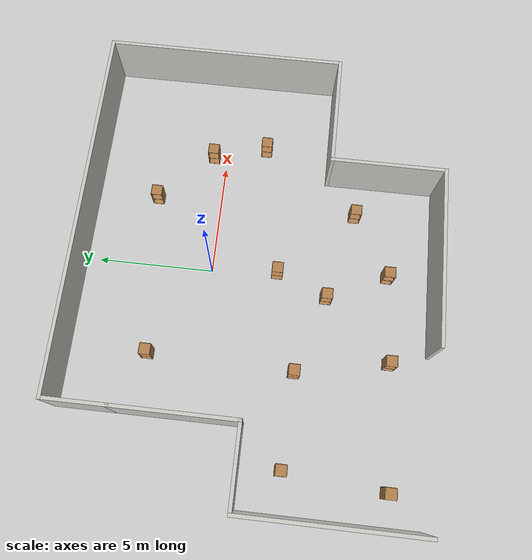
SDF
<sdf version="1.7">
 <world name="default">
  <light name="sun" type="directional">
   <pose>0 0 10 0 -0 0</pose>
   <diffuse>0.8 0.8 0.8 1</diffuse>
   <specular>0.2 0.2 0.2 1</specular>
   <attenuation>
    <range>1000</range>
    <constant>0.9</constant>
    <linear>0.01</linear>
    <quadratic>0.001</quadratic>
   </attenuation>
   <direction>-0.5 0.1 -0.9</direction>
   <spot><inner_angle>0</inner_angle><outer_angle>0</outer_angle><falloff>0</falloff></spot>
  </light>
  <model name="ground_plane">
   <static>1</static>
   <link name="link">
    <collision name="collision">
     <geometry><plane><normal>0 0 1</normal><size>100 100</size></plane></geometry>
     <surface><friction><ode><mu>100</mu><mu2>50</mu2></ode></friction></surface>
    </collision>
    <visual name="visual">
     <cast_shadows>0</cast_shadows>
     <geometry><plane><normal>0 0 1</normal><size>100 100</size></plane></geometry>
     <material>
      <script><uri>file://media/materials/scripts/gazebo.material</uri><name>Gazebo/Grey</name></script>
     </material>
    </visual>
   </link>
  </model>
  <gravity>0 0 -9.8</gravity>
  <magnetic_field>6e-06 2.3e-05 -4.2e-05</magnetic_field>
  <atmosphere type="adiabatic"/>
  <physics type="ode">
   <max_step_size>0.001</max_step_size>
   <real_time_factor>1</real_time_factor>
   <real_time_update_rate>1000</real_time_update_rate>
  </physics>
  <scene><ambient>0.4 0.4 0.4 1</ambient><background>0.7 0.7 0.7 1</background><shadows>1</shadows></scene>
  <audio><device>default</device></audio>
  <spherical_coordinates>
   <surface_model>EARTH_WGS84</surface_model>
   <latitude_deg>0</latitude_deg>
   <longitude_deg>0</longitude_deg>
   <elevation>0</elevation>
   <heading_deg>0</heading_deg>
  </spherical_coordinates>
  <model name="muestra">
   <pose>-0.08947 -1.96148 0 0 -0 0</pose>
   <link name="Wall_10">
    <collision name="Wall_10_Collision">
     <geometry><box><size>5 0.15 2.5</size></box></geometry>
     <pose>0 0 1.25 0 -0 0</pose>
    </collision>
    <visual name="Wall_10_Visual">
     <pose>0 0 1.25 0 -0 0</pose>
     <geometry><box><size>5 0.15 2.5</size></box></geometry>
     <material>
      <script><uri>file://media/materials/scripts/gazebo.material</uri><name>Gazebo/CeilingTiled</name></script>
      <ambient>1 1 1 1</ambient>
     </material>
     <meta><layer>0</layer></meta>
    </visual>
    <pose>4.875 -5.175 0 0 -0 -1.5708</pose>
   </link>
   <link name="Wall_11">
    <collision name="Wall_11_Collision">
     <geometry><box><size>7.75 0.15 2.5</size></box></geometry>
     <pose>0 0 1.25 0 -0 0</pose>
    </collision>
    <visual name="Wall_11_Visual">
     <pose>0 0 1.25 0 -0 0</pose>
     <geometry><box><size>7.75 0.15 2.5</size></box></geometry>
     <material>
      <script><uri>file://media/materials/scripts/gazebo.material</uri><name>Gazebo/CeilingTiled</name></script>
      <ambient>1 1 1 1</ambient>
     </material>
     <meta><layer>0</layer></meta>
    </visual>
    <pose>1.075 -7.6 0 0 -0 3.14159</pose>
   </link>
   <link name="Wall_3">
    <collision name="Wall_3_Collision">
     <geometry><box><size>7.5 0.15 2.5</size></box></geometry>
     <pose>0 0 1.25 0 -0 0</pose>
    </collision>
    <visual name="Wall_3_Visual">
     <pose>0 0 1.25 0 -0 0</pose>
     <geometry><box><size>7.5 0.15 2.5</size></box></geometry>
     <material>
      <script><uri>file://media/materials/scripts/gazebo.material</uri><name>Gazebo/CeilingTiled</name></script>
      <ambient>1 1 1 1</ambient>
     </material>
     <meta><layer>0</layer></meta>
    </visual>
    <pose>-9.725 -3.775 0 0 -0 1.5708</pose>
   </link>
   <link name="Wall_4">
    <collision name="Wall_4_Collision">
     <geometry><box><size>3.5 0.15 2.5</size></box></geometry>
     <pose>0 0 1.25 0 -0 0</pose>
    </collision>
    <visual name="Wall_4_Visual">
     <pose>0 0 1.25 0 -0 0</pose>
     <geometry><box><size>3.5 0.15 2.5</size></box></geometry>
     <material>
      <script><uri>file://media/materials/scripts/gazebo.material</uri><name>Gazebo/CeilingTiled</name></script>
      <ambient>1 1 1 1</ambient>
     </material>
     <meta><layer>0</layer></meta>
    </visual>
    <pose>-8.05 -0.1 0 0 -0 0</pose>
   </link>
   <link name="Wall_5">
    <collision name="Wall_5_Collision">
     <geometry><box><size>5.25 0.15 2.5</size></box></geometry>
     <pose>0 0 1.25 0 -0 0</pose>
    </collision>
    <visual name="Wall_5_Visual">
     <pose>0 0 1.25 0 -0 0</pose>
     <geometry><box><size>5.25 0.15 2.5</size></box></geometry>
     <material>
      <script><uri>file://media/materials/scripts/gazebo.material</uri><name>Gazebo/CeilingTiled</name></script>
      <ambient>1 1 1 1</ambient>
     </material>
     <meta><layer>0</layer></meta>
    </visual>
    <pose>-6.375 2.45 0 0 -0 1.5708</pose>
   </link>
   <link name="Wall_6">
    <collision name="Wall_6_Collision">
     <geometry><box><size>2.75 0.15 2.5</size></box></geometry>
     <pose>0 0 1.25 0 -0 0</pose>
    </collision>
    <visual name="Wall_6_Visual">
     <pose>0 0 1.25 0 -0 0</pose>
     <geometry><box><size>2.75 0.15 2.5</size></box></geometry>
     <material>
      <script><uri>file://media/materials/scripts/gazebo.material</uri><name>Gazebo/CeilingTiled</name></script>
      <ambient>1 1 1 1</ambient>
     </material>
     <meta><layer>0</layer></meta>
    </visual>
    <pose>-6.375 6.3 0 0 -0 1.5708</pose>
   </link>
   <link name="Wall_7">
    <collision name="Wall_7_Collision">
     <geometry><box><size>16.25 0.15 2.5</size></box></geometry>
     <pose>0 0 1.25 0 -0 0</pose>
    </collision>
    <visual name="Wall_7_Visual">
     <pose>0 0 1.25 0 -0 0</pose>
     <geometry><box><size>16.25 0.15 2.5</size></box></geometry>
     <material>
      <script><uri>file://media/materials/scripts/gazebo.material</uri><name>Gazebo/CeilingTiled</name></script>
      <ambient>1 1 1 1</ambient>
     </material>
     <meta><layer>0</layer></meta>
    </visual>
    <pose>1.675 7.6 0 0 -0 0</pose>
   </link>
   <link name="Wall_8">
    <collision name="Wall_8_Collision">
     <geometry><box><size>10.5 0.15 2.5</size></box></geometry>
     <pose>0 0 1.25 0 -0 0</pose>
    </collision>
    <visual name="Wall_8_Visual">
     <pose>0 0 1.25 0 -0 0</pose>
     <geometry><box><size>10.5 0.15 2.5</size></box></geometry>
     <material>
      <script><uri>file://media/materials/scripts/gazebo.material</uri><name>Gazebo/CeilingTiled</name></script>
      <ambient>1 1 1 1</ambient>
     </material>
     <meta><layer>0</layer></meta>
    </visual>
    <pose>9.725 2.425 0 0 -0 -1.5708</pose>
   </link>
   <link name="Wall_9">
    <collision name="Wall_9_Collision">
     <geometry><box><size>5 0.15 2.5</size></box></geometry>
     <pose>0 0 1.25 0 -0 0</pose>
    </collision>
    <visual name="Wall_9_Visual">
     <pose>0 0 1.25 0 -0 0</pose>
     <geometry><box><size>5 0.15 2.5</size></box></geometry>
     <material>
      <script><uri>file://media/materials/scripts/gazebo.material</uri><name>Gazebo/CeilingTiled</name></script>
      <ambient>1 1 1 1</ambient>
     </material>
     <meta><layer>0</layer></meta>
    </visual>
    <pose>7.3 -2.75 0 0 -0 3.14159</pose>
   </link>
   <static>1</static>
  </model>
  <model name="cabinet">
   <static>1</static>
   <link name="cabinet_bottom_plate">
    <inertial>
     <pose>0 0 -1 0 -0 0</pose>
     <inertia><ixx>2.05</ixx><ixy>0</ixy><ixz>0</ixz><iyy>2.05</iyy><iyz>0</iyz><izz>2.05</izz></inertia>
     <mass>25</mass>
    </inertial>
    <collision name="cabinet_bottom_plate_geom">
     <pose>0 0 0.01 0 -0 0</pose>
     <geometry><box><size>0.45 0.45 0.02</size></box></geometry>
    </collision>
    <visual name="cabinet_bottom_plate_geom_visual">
     <pose>0 0 0.01 0 -0 0</pose>
     <geometry><box><size>0.45 0.45 0.02</size></box></geometry>
     <material>
      <script><uri>file://media/materials/scripts/gazebo.material</uri><name>Gazebo/Wood</name></script>
     </material>
    </visual>
    <collision name="cabinet_bottom_plate_geom_cabinet_back_plate">
     <pose>0.235 0 0.51 0 -0 0</pose>
     <geometry><box><size>0.02 0.45 1.02</size></box></geometry>
    </collision>
    <visual name="cabinet_bottom_plate_geom_cabinet_back_plate_visual">
     <pose>0.235 0 0.51 0 -0 0</pose>
     <geometry><box><size>0.02 0.45 1.02</size></box></geometry>
     <material>
      <script><uri>file://media/materials/scripts/gazebo.material</uri><name>Gazebo/Wood</name></script>
     </material>
    </visual>
    <collision name="cabinet_bottom_plate_geom_cabinet_left_plate">
     <pose>0 0.235 0.51 0 -0 0</pose>
     <geometry><box><size>0.45 0.02 1.02</size></box></geometry>
    </collision>
    <visual name="cabinet_bottom_plate_geom_cabinet_left_plate_visual">
     <pose>0 0.235 0.51 0 -0 0</pose>
     <geometry><box><size>0.45 0.02 1.02</size></box></geometry>
     <material>
      <script><uri>file://media/materials/scripts/gazebo.material</uri><name>Gazebo/Wood</name></script>
     </material>
    </visual>
    <collision name="cabinet_bottom_plate_geom_cabinet_middle_plate">
     <pose>0 0 0.51 0 -0 0</pose>
     <geometry><box><size>0.45 0.45 0.02</size></box></geometry>
    </collision>
    <visual name="cabinet_bottom_plate_geom_cabinet_middle_plate_visual">
     <pose>0 0 0.51 0 -0 0</pose>
     <geometry><box><size>0.45 0.45 0.02</size></box></geometry>
     <material>
      <script><uri>file://media/materials/scripts/gazebo.material</uri><name>Gazebo/Wood</name></script>
     </material>
    </visual>
    <collision name="cabinet_bottom_plate_geom_cabinet_right_plate">
     <pose>0 -0.235 0.51 0 -0 0</pose>
     <geometry><box><size>0.45 0.02 1.02</size></box></geometry>
    </collision>
    <visual name="cabinet_bottom_plate_geom_cabinet_right_plate_visual">
     <pose>0 -0.235 0.51 0 -0 0</pose>
     <geometry><box><size>0.45 0.02 1.02</size></box></geometry>
     <material>
      <script><uri>file://media/materials/scripts/gazebo.material</uri><name>Gazebo/Wood</name></script>
     </material>
    </visual>
    <collision name="cabinet_bottom_plate_geom_cabinet_top_plate">
     <pose>0 0 1.01 0 -0 0</pose>
     <geometry><box><size>0.45 0.45 0.02</size></box></geometry>
    </collision>
    <visual name="cabinet_bottom_plate_geom_cabinet_top_plate_visual">
     <pose>0 0 1.01 0 -0 0</pose>
     <geometry><box><size>0.45 0.45 0.02</size></box></geometry>
     <material>
      <script><uri>file://media/materials/scripts/gazebo.material</uri><name>Gazebo/Wood</name></script>
     </material>
    </visual>
   </link>
   <pose>-4.10967 -3.96958 0 0 -0 0</pose>
  </model>
  <model name="cabinet_0">
   <static>1</static>
   <link name="cabinet_bottom_plate">
    <inertial>
     <pose>0 0 -1 0 -0 0</pose>
     <inertia><ixx>2.05</ixx><ixy>0</ixy><ixz>0</ixz><iyy>2.05</iyy><iyz>0</iyz><izz>2.05</izz></inertia>
     <mass>25</mass>
    </inertial>
    <collision name="cabinet_bottom_plate_geom">
     <pose>0 0 0.01 0 -0 0</pose>
     <geometry><box><size>0.45 0.45 0.02</size></box></geometry>
    </collision>
    <visual name="cabinet_bottom_plate_geom_visual">
     <pose>0 0 0.01 0 -0 0</pose>
     <geometry><box><size>0.45 0.45 0.02</size></box></geometry>
     <material>
      <script><uri>file://media/materials/scripts/gazebo.material</uri><name>Gazebo/Wood</name></script>
     </material>
    </visual>
    <collision name="cabinet_bottom_plate_geom_cabinet_back_plate">
     <pose>0.235 0 0.51 0 -0 0</pose>
     <geometry><box><size>0.02 0.45 1.02</size></box></geometry>
    </collision>
    <visual name="cabinet_bottom_plate_geom_cabinet_back_plate_visual">
     <pose>0.235 0 0.51 0 -0 0</pose>
     <geometry><box><size>0.02 0.45 1.02</size></box></geometry>
     <material>
      <script><uri>file://media/materials/scripts/gazebo.material</uri><name>Gazebo/Wood</name></script>
     </material>
    </visual>
    <collision name="cabinet_bottom_plate_geom_cabinet_left_plate">
     <pose>0 0.235 0.51 0 -0 0</pose>
     <geometry><box><size>0.45 0.02 1.02</size></box></geometry>
    </collision>
    <visual name="cabinet_bottom_plate_geom_cabinet_left_plate_visual">
     <pose>0 0.235 0.51 0 -0 0</pose>
     <geometry><box><size>0.45 0.02 1.02</size></box></geometry>
     <material>
      <script><uri>file://media/materials/scripts/gazebo.material</uri><name>Gazebo/Wood</name></script>
     </material>
    </visual>
    <collision name="cabinet_bottom_plate_geom_cabinet_middle_plate">
     <pose>0 0 0.51 0 -0 0</pose>
     <geometry><box><size>0.45 0.45 0.02</size></box></geometry>
    </collision>
    <visual name="cabinet_bottom_plate_geom_cabinet_middle_plate_visual">
     <pose>0 0 0.51 0 -0 0</pose>
     <geometry><box><size>0.45 0.45 0.02</size></box></geometry>
     <material>
      <script><uri>file://media/materials/scripts/gazebo.material</uri><name>Gazebo/Wood</name></script>
     </material>
    </visual>
    <collision name="cabinet_bottom_plate_geom_cabinet_right_plate">
     <pose>0 -0.235 0.51 0 -0 0</pose>
     <geometry><box><size>0.45 0.02 1.02</size></box></geometry>
    </collision>
    <visual name="cabinet_bottom_plate_geom_cabinet_right_plate_visual">
     <pose>0 -0.235 0.51 0 -0 0</pose>
     <geometry><box><size>0.45 0.02 1.02</size></box></geometry>
     <material>
      <script><uri>file://media/materials/scripts/gazebo.material</uri><name>Gazebo/Wood</name></script>
     </material>
    </visual>
    <collision name="cabinet_bottom_plate_geom_cabinet_top_plate">
     <pose>0 0 1.01 0 -0 0</pose>
     <geometry><box><size>0.45 0.45 0.02</size></box></geometry>
    </collision>
    <visual name="cabinet_bottom_plate_geom_cabinet_top_plate_visual">
     <pose>0 0 1.01 0 -0 0</pose>
     <geometry><box><size>0.45 0.45 0.02</size></box></geometry>
     <material>
      <script><uri>file://media/materials/scripts/gazebo.material</uri><name>Gazebo/Wood</name></script>
     </material>
    </visual>
   </link>
   <pose>-0.742373 -5.06449 0 0 -0 0</pose>
  </model>
  <model name="cabinet_1">
   <static>1</static>
   <link name="cabinet_bottom_plate">
    <inertial>
     <pose>0 0 -1 0 -0 0</pose>
     <inertia><ixx>2.05</ixx><ixy>0</ixy><ixz>0</ixz><iyy>2.05</iyy><iyz>0</iyz><izz>2.05</izz></inertia>
     <mass>25</mass>
    </inertial>
    <collision name="cabinet_bottom_plate_geom">
     <pose>0 0 0.01 0 -0 0</pose>
     <geometry><box><size>0.45 0.45 0.02</size></box></geometry>
    </collision>
    <visual name="cabinet_bottom_plate_geom_visual">
     <pose>0 0 0.01 0 -0 0</pose>
     <geometry><box><size>0.45 0.45 0.02</size></box></geometry>
     <material>
      <script><uri>file://media/materials/scripts/gazebo.material</uri><name>Gazebo/Wood</name></script>
     </material>
    </visual>
    <collision name="cabinet_bottom_plate_geom_cabinet_back_plate">
     <pose>0.235 0 0.51 0 -0 0</pose>
     <geometry><box><size>0.02 0.45 1.02</size></box></geometry>
    </collision>
    <visual name="cabinet_bottom_plate_geom_cabinet_back_plate_visual">
     <pose>0.235 0 0.51 0 -0 0</pose>
     <geometry><box><size>0.02 0.45 1.02</size></box></geometry>
     <material>
      <script><uri>file://media/materials/scripts/gazebo.material</uri><name>Gazebo/Wood</name></script>
     </material>
    </visual>
    <collision name="cabinet_bottom_plate_geom_cabinet_left_plate">
     <pose>0 0.235 0.51 0 -0 0</pose>
     <geometry><box><size>0.45 0.02 1.02</size></box></geometry>
    </collision>
    <visual name="cabinet_bottom_plate_geom_cabinet_left_plate_visual">
     <pose>0 0.235 0.51 0 -0 0</pose>
     <geometry><box><size>0.45 0.02 1.02</size></box></geometry>
     <material>
      <script><uri>file://media/materials/scripts/gazebo.material</uri><name>Gazebo/Wood</name></script>
     </material>
    </visual>
    <collision name="cabinet_bottom_plate_geom_cabinet_middle_plate">
     <pose>0 0 0.51 0 -0 0</pose>
     <geometry><box><size>0.45 0.45 0.02</size></box></geometry>
    </collision>
    <visual name="cabinet_bottom_plate_geom_cabinet_middle_plate_visual">
     <pose>0 0 0.51 0 -0 0</pose>
     <geometry><box><size>0.45 0.45 0.02</size></box></geometry>
     <material>
      <script><uri>file://media/materials/scripts/gazebo.material</uri><name>Gazebo/Wood</name></script>
     </material>
    </visual>
    <collision name="cabinet_bottom_plate_geom_cabinet_right_plate">
     <pose>0 -0.235 0.51 0 -0 0</pose>
     <geometry><box><size>0.45 0.02 1.02</size></box></geometry>
    </collision>
    <visual name="cabinet_bottom_plate_geom_cabinet_right_plate_visual">
     <pose>0 -0.235 0.51 0 -0 0</pose>
     <geometry><box><size>0.45 0.02 1.02</size></box></geometry>
     <material>
      <script><uri>file://media/materials/scripts/gazebo.material</uri><name>Gazebo/Wood</name></script>
     </material>
    </visual>
    <collision name="cabinet_bottom_plate_geom_cabinet_top_plate">
     <pose>0 0 1.01 0 -0 0</pose>
     <geometry><box><size>0.45 0.45 0.02</size></box></geometry>
    </collision>
    <visual name="cabinet_bottom_plate_geom_cabinet_top_plate_visual">
     <pose>0 0 1.01 0 -0 0</pose>
     <geometry><box><size>0.45 0.45 0.02</size></box></geometry>
     <material>
      <script><uri>file://media/materials/scripts/gazebo.material</uri><name>Gazebo/Wood</name></script>
     </material>
    </visual>
   </link>
   <pose>3.21142 -6.05672 0 0 -0 0</pose>
  </model>
  <model name="cabinet_2">
   <static>1</static>
   <link name="cabinet_bottom_plate">
    <inertial>
     <pose>0 0 -1 0 -0 0</pose>
     <inertia><ixx>2.05</ixx><ixy>0</ixy><ixz>0</ixz><iyy>2.05</iyy><iyz>0</iyz><izz>2.05</izz></inertia>
     <mass>25</mass>
    </inertial>
    <collision name="cabinet_bottom_plate_geom">
     <pose>0 0 0.01 0 -0 0</pose>
     <geometry><box><size>0.45 0.45 0.02</size></box></geometry>
    </collision>
    <visual name="cabinet_bottom_plate_geom_visual">
     <pose>0 0 0.01 0 -0 0</pose>
     <geometry><box><size>0.45 0.45 0.02</size></box></geometry>
     <material>
      <script><uri>file://media/materials/scripts/gazebo.material</uri><name>Gazebo/Wood</name></script>
     </material>
    </visual>
    <collision name="cabinet_bottom_plate_geom_cabinet_back_plate">
     <pose>0.235 0 0.51 0 -0 0</pose>
     <geometry><box><size>0.02 0.45 1.02</size></box></geometry>
    </collision>
    <visual name="cabinet_bottom_plate_geom_cabinet_back_plate_visual">
     <pose>0.235 0 0.51 0 -0 0</pose>
     <geometry><box><size>0.02 0.45 1.02</size></box></geometry>
     <material>
      <script><uri>file://media/materials/scripts/gazebo.material</uri><name>Gazebo/Wood</name></script>
     </material>
    </visual>
    <collision name="cabinet_bottom_plate_geom_cabinet_left_plate">
     <pose>0 0.235 0.51 0 -0 0</pose>
     <geometry><box><size>0.45 0.02 1.02</size></box></geometry>
    </collision>
    <visual name="cabinet_bottom_plate_geom_cabinet_left_plate_visual">
     <pose>0 0.235 0.51 0 -0 0</pose>
     <geometry><box><size>0.45 0.02 1.02</size></box></geometry>
     <material>
      <script><uri>file://media/materials/scripts/gazebo.material</uri><name>Gazebo/Wood</name></script>
     </material>
    </visual>
    <collision name="cabinet_bottom_plate_geom_cabinet_middle_plate">
     <pose>0 0 0.51 0 -0 0</pose>
     <geometry><box><size>0.45 0.45 0.02</size></box></geometry>
    </collision>
    <visual name="cabinet_bottom_plate_geom_cabinet_middle_plate_visual">
     <pose>0 0 0.51 0 -0 0</pose>
     <geometry><box><size>0.45 0.45 0.02</size></box></geometry>
     <material>
      <script><uri>file://media/materials/scripts/gazebo.material</uri><name>Gazebo/Wood</name></script>
     </material>
    </visual>
    <collision name="cabinet_bottom_plate_geom_cabinet_right_plate">
     <pose>0 -0.235 0.51 0 -0 0</pose>
     <geometry><box><size>0.45 0.02 1.02</size></box></geometry>
    </collision>
    <visual name="cabinet_bottom_plate_geom_cabinet_right_plate_visual">
     <pose>0 -0.235 0.51 0 -0 0</pose>
     <geometry><box><size>0.45 0.02 1.02</size></box></geometry>
     <material>
      <script><uri>file://media/materials/scripts/gazebo.material</uri><name>Gazebo/Wood</name></script>
     </material>
    </visual>
    <collision name="cabinet_bottom_plate_geom_cabinet_top_plate">
     <pose>0 0 1.01 0 -0 0</pose>
     <geometry><box><size>0.45 0.45 0.02</size></box></geometry>
    </collision>
    <visual name="cabinet_bottom_plate_geom_cabinet_top_plate_visual">
     <pose>0 0 1.01 0 -0 0</pose>
     <geometry><box><size>0.45 0.45 0.02</size></box></geometry>
     <material>
      <script><uri>file://media/materials/scripts/gazebo.material</uri><name>Gazebo/Wood</name></script>
     </material>
    </visual>
   </link>
   <pose>5.52083 0.579632 0 0 -0 0</pose>
  </model>
  <model name="cabinet_3">
   <static>1</static>
   <link name="cabinet_bottom_plate">
    <inertial>
     <pose>0 0 -1 0 -0 0</pose>
     <inertia><ixx>2.05</ixx><ixy>0</ixy><ixz>0</ixz><iyy>2.05</iyy><iyz>0</iyz><izz>2.05</izz></inertia>
     <mass>25</mass>
    </inertial>
    <collision name="cabinet_bottom_plate_geom">
     <pose>0 0 0.01 0 -0 0</pose>
     <geometry><box><size>0.45 0.45 0.02</size></box></geometry>
    </collision>
    <visual name="cabinet_bottom_plate_geom_visual">
     <pose>0 0 0.01 0 -0 0</pose>
     <geometry><box><size>0.45 0.45 0.02</size></box></geometry>
     <material>
      <script><uri>file://media/materials/scripts/gazebo.material</uri><name>Gazebo/Wood</name></script>
     </material>
    </visual>
    <collision name="cabinet_bottom_plate_geom_cabinet_back_plate">
     <pose>0.235 0 0.51 0 -0 0</pose>
     <geometry><box><size>0.02 0.45 1.02</size></box></geometry>
    </collision>
    <visual name="cabinet_bottom_plate_geom_cabinet_back_plate_visual">
     <pose>0.235 0 0.51 0 -0 0</pose>
     <geometry><box><size>0.02 0.45 1.02</size></box></geometry>
     <material>
      <script><uri>file://media/materials/scripts/gazebo.material</uri><name>Gazebo/Wood</name></script>
     </material>
    </visual>
    <collision name="cabinet_bottom_plate_geom_cabinet_left_plate">
     <pose>0 0.235 0.51 0 -0 0</pose>
     <geometry><box><size>0.45 0.02 1.02</size></box></geometry>
    </collision>
    <visual name="cabinet_bottom_plate_geom_cabinet_left_plate_visual">
     <pose>0 0.235 0.51 0 -0 0</pose>
     <geometry><box><size>0.45 0.02 1.02</size></box></geometry>
     <material>
      <script><uri>file://media/materials/scripts/gazebo.material</uri><name>Gazebo/Wood</name></script>
     </material>
    </visual>
    <collision name="cabinet_bottom_plate_geom_cabinet_middle_plate">
     <pose>0 0 0.51 0 -0 0</pose>
     <geometry><box><size>0.45 0.45 0.02</size></box></geometry>
    </collision>
    <visual name="cabinet_bottom_plate_geom_cabinet_middle_plate_visual">
     <pose>0 0 0.51 0 -0 0</pose>
     <geometry><box><size>0.45 0.45 0.02</size></box></geometry>
     <material>
      <script><uri>file://media/materials/scripts/gazebo.material</uri><name>Gazebo/Wood</name></script>
     </material>
    </visual>
    <collision name="cabinet_bottom_plate_geom_cabinet_right_plate">
     <pose>0 -0.235 0.51 0 -0 0</pose>
     <geometry><box><size>0.45 0.02 1.02</size></box></geometry>
    </collision>
    <visual name="cabinet_bottom_plate_geom_cabinet_right_plate_visual">
     <pose>0 -0.235 0.51 0 -0 0</pose>
     <geometry><box><size>0.45 0.02 1.02</size></box></geometry>
     <material>
      <script><uri>file://media/materials/scripts/gazebo.material</uri><name>Gazebo/Wood</name></script>
     </material>
    </visual>
    <collision name="cabinet_bottom_plate_geom_cabinet_top_plate">
     <pose>0 0 1.01 0 -0 0</pose>
     <geometry><box><size>0.45 0.45 0.02</size></box></geometry>
    </collision>
    <visual name="cabinet_bottom_plate_geom_cabinet_top_plate_visual">
     <pose>0 0 1.01 0 -0 0</pose>
     <geometry><box><size>0.45 0.45 0.02</size></box></geometry>
     <material>
      <script><uri>file://media/materials/scripts/gazebo.material</uri><name>Gazebo/Wood</name></script>
     </material>
    </visual>
   </link>
   <pose>0.186017 -2.86758 0 0 -0 0</pose>
  </model>
  <model name="cabinet_4">
   <static>1</static>
   <link name="cabinet_bottom_plate">
    <inertial>
     <pose>0 0 -1 0 -0 0</pose>
     <inertia><ixx>2.05</ixx><ixy>0</ixy><ixz>0</ixz><iyy>2.05</iyy><iyz>0</iyz><izz>2.05</izz></inertia>
     <mass>25</mass>
    </inertial>
    <collision name="cabinet_bottom_plate_geom">
     <pose>0 0 0.01 0 -0 0</pose>
     <geometry><box><size>0.45 0.45 0.02</size></box></geometry>
    </collision>
    <visual name="cabinet_bottom_plate_geom_visual">
     <pose>0 0 0.01 0 -0 0</pose>
     <geometry><box><size>0.45 0.45 0.02</size></box></geometry>
     <material>
      <script><uri>file://media/materials/scripts/gazebo.material</uri><name>Gazebo/Wood</name></script>
     </material>
    </visual>
    <collision name="cabinet_bottom_plate_geom_cabinet_back_plate">
     <pose>0.235 0 0.51 0 -0 0</pose>
     <geometry><box><size>0.02 0.45 1.02</size></box></geometry>
    </collision>
    <visual name="cabinet_bottom_plate_geom_cabinet_back_plate_visual">
     <pose>0.235 0 0.51 0 -0 0</pose>
     <geometry><box><size>0.02 0.45 1.02</size></box></geometry>
     <material>
      <script><uri>file://media/materials/scripts/gazebo.material</uri><name>Gazebo/Wood</name></script>
     </material>
    </visual>
    <collision name="cabinet_bottom_plate_geom_cabinet_left_plate">
     <pose>0 0.235 0.51 0 -0 0</pose>
     <geometry><box><size>0.45 0.02 1.02</size></box></geometry>
    </collision>
    <visual name="cabinet_bottom_plate_geom_cabinet_left_plate_visual">
     <pose>0 0.235 0.51 0 -0 0</pose>
     <geometry><box><size>0.45 0.02 1.02</size></box></geometry>
     <material>
      <script><uri>file://media/materials/scripts/gazebo.material</uri><name>Gazebo/Wood</name></script>
     </material>
    </visual>
    <collision name="cabinet_bottom_plate_geom_cabinet_middle_plate">
     <pose>0 0 0.51 0 -0 0</pose>
     <geometry><box><size>0.45 0.45 0.02</size></box></geometry>
    </collision>
    <visual name="cabinet_bottom_plate_geom_cabinet_middle_plate_visual">
     <pose>0 0 0.51 0 -0 0</pose>
     <geometry><box><size>0.45 0.45 0.02</size></box></geometry>
     <material>
      <script><uri>file://media/materials/scripts/gazebo.material</uri><name>Gazebo/Wood</name></script>
     </material>
    </visual>
    <collision name="cabinet_bottom_plate_geom_cabinet_right_plate">
     <pose>0 -0.235 0.51 0 -0 0</pose>
     <geometry><box><size>0.45 0.02 1.02</size></box></geometry>
    </collision>
    <visual name="cabinet_bottom_plate_geom_cabinet_right_plate_visual">
     <pose>0 -0.235 0.51 0 -0 0</pose>
     <geometry><box><size>0.45 0.02 1.02</size></box></geometry>
     <material>
      <script><uri>file://media/materials/scripts/gazebo.material</uri><name>Gazebo/Wood</name></script>
     </material>
    </visual>
    <collision name="cabinet_bottom_plate_geom_cabinet_top_plate">
     <pose>0 0 1.01 0 -0 0</pose>
     <geometry><box><size>0.45 0.45 0.02</size></box></geometry>
    </collision>
    <visual name="cabinet_bottom_plate_geom_cabinet_top_plate_visual">
     <pose>0 0 1.01 0 -0 0</pose>
     <geometry><box><size>0.45 0.45 0.02</size></box></geometry>
     <material>
      <script><uri>file://media/materials/scripts/gazebo.material</uri><name>Gazebo/Wood</name></script>
     </material>
    </visual>
   </link>
   <pose>-3.92954 2.23007 0 0 -0 0</pose>
  </model>
  <model name="cabinet_5">
   <static>1</static>
   <link name="cabinet_bottom_plate">
    <inertial>
     <pose>0 0 -1 0 -0 0</pose>
     <inertia><ixx>2.05</ixx><ixy>0</ixy><ixz>0</ixz><iyy>2.05</iyy><iyz>0</iyz><izz>2.05</izz></inertia>
     <mass>25</mass>
    </inertial>
    <collision name="cabinet_bottom_plate_geom">
     <pose>0 0 0.01 0 -0 0</pose>
     <geometry><box><size>0.45 0.45 0.02</size></box></geometry>
    </collision>
    <visual name="cabinet_bottom_plate_geom_visual">
     <pose>0 0 0.01 0 -0 0</pose>
     <geometry><box><size>0.45 0.45 0.02</size></box></geometry>
     <material>
      <script><uri>file://media/materials/scripts/gazebo.material</uri><name>Gazebo/Wood</name></script>
     </material>
    </visual>
    <collision name="cabinet_bottom_plate_geom_cabinet_back_plate">
     <pose>0.235 0 0.51 0 -0 0</pose>
     <geometry><box><size>0.02 0.45 1.02</size></box></geometry>
    </collision>
    <visual name="cabinet_bottom_plate_geom_cabinet_back_plate_visual">
     <pose>0.235 0 0.51 0 -0 0</pose>
     <geometry><box><size>0.02 0.45 1.02</size></box></geometry>
     <material>
      <script><uri>file://media/materials/scripts/gazebo.material</uri><name>Gazebo/Wood</name></script>
     </material>
    </visual>
    <collision name="cabinet_bottom_plate_geom_cabinet_left_plate">
     <pose>0 0.235 0.51 0 -0 0</pose>
     <geometry><box><size>0.45 0.02 1.02</size></box></geometry>
    </collision>
    <visual name="cabinet_bottom_plate_geom_cabinet_left_plate_visual">
     <pose>0 0.235 0.51 0 -0 0</pose>
     <geometry><box><size>0.45 0.02 1.02</size></box></geometry>
     <material>
      <script><uri>file://media/materials/scripts/gazebo.material</uri><name>Gazebo/Wood</name></script>
     </material>
    </visual>
    <collision name="cabinet_bottom_plate_geom_cabinet_middle_plate">
     <pose>0 0 0.51 0 -0 0</pose>
     <geometry><box><size>0.45 0.45 0.02</size></box></geometry>
    </collision>
    <visual name="cabinet_bottom_plate_geom_cabinet_middle_plate_visual">
     <pose>0 0 0.51 0 -0 0</pose>
     <geometry><box><size>0.45 0.45 0.02</size></box></geometry>
     <material>
      <script><uri>file://media/materials/scripts/gazebo.material</uri><name>Gazebo/Wood</name></script>
     </material>
    </visual>
    <collision name="cabinet_bottom_plate_geom_cabinet_right_plate">
     <pose>0 -0.235 0.51 0 -0 0</pose>
     <geometry><box><size>0.45 0.02 1.02</size></box></geometry>
    </collision>
    <visual name="cabinet_bottom_plate_geom_cabinet_right_plate_visual">
     <pose>0 -0.235 0.51 0 -0 0</pose>
     <geometry><box><size>0.45 0.02 1.02</size></box></geometry>
     <material>
      <script><uri>file://media/materials/scripts/gazebo.material</uri><name>Gazebo/Wood</name></script>
     </material>
    </visual>
    <collision name="cabinet_bottom_plate_geom_cabinet_top_plate">
     <pose>0 0 1.01 0 -0 0</pose>
     <geometry><box><size>0.45 0.45 0.02</size></box></geometry>
    </collision>
    <visual name="cabinet_bottom_plate_geom_cabinet_top_plate_visual">
     <pose>0 0 1.01 0 -0 0</pose>
     <geometry><box><size>0.45 0.45 0.02</size></box></geometry>
     <material>
      <script><uri>file://media/materials/scripts/gazebo.material</uri><name>Gazebo/Wood</name></script>
     </material>
    </visual>
   </link>
   <pose>3.20119 2.84122 0 0 -0 0</pose>
  </model>
  <model name="cabinet_6">
   <static>1</static>
   <link name="cabinet_bottom_plate">
    <inertial>
     <pose>0 0 -1 0 -0 0</pose>
     <inertia><ixx>2.05</ixx><ixy>0</ixy><ixz>0</ixz><iyy>2.05</iyy><iyz>0</iyz><izz>2.05</izz></inertia>
     <mass>25</mass>
    </inertial>
    <collision name="cabinet_bottom_plate_geom">
     <pose>0 0 0.01 0 -0 0</pose>
     <geometry><box><size>0.45 0.45 0.02</size></box></geometry>
    </collision>
    <visual name="cabinet_bottom_plate_geom_visual">
     <pose>0 0 0.01 0 -0 0</pose>
     <geometry><box><size>0.45 0.45 0.02</size></box></geometry>
     <material>
      <script><uri>file://media/materials/scripts/gazebo.material</uri><name>Gazebo/Wood</name></script>
     </material>
    </visual>
    <collision name="cabinet_bottom_plate_geom_cabinet_back_plate">
     <pose>0.235 0 0.51 0 -0 0</pose>
     <geometry><box><size>0.02 0.45 1.02</size></box></geometry>
    </collision>
    <visual name="cabinet_bottom_plate_geom_cabinet_back_plate_visual">
     <pose>0.235 0 0.51 0 -0 0</pose>
     <geometry><box><size>0.02 0.45 1.02</size></box></geometry>
     <material>
      <script><uri>file://media/materials/scripts/gazebo.material</uri><name>Gazebo/Wood</name></script>
     </material>
    </visual>
    <collision name="cabinet_bottom_plate_geom_cabinet_left_plate">
     <pose>0 0.235 0.51 0 -0 0</pose>
     <geometry><box><size>0.45 0.02 1.02</size></box></geometry>
    </collision>
    <visual name="cabinet_bottom_plate_geom_cabinet_left_plate_visual">
     <pose>0 0.235 0.51 0 -0 0</pose>
     <geometry><box><size>0.45 0.02 1.02</size></box></geometry>
     <material>
      <script><uri>file://media/materials/scripts/gazebo.material</uri><name>Gazebo/Wood</name></script>
     </material>
    </visual>
    <collision name="cabinet_bottom_plate_geom_cabinet_middle_plate">
     <pose>0 0 0.51 0 -0 0</pose>
     <geometry><box><size>0.45 0.45 0.02</size></box></geometry>
    </collision>
    <visual name="cabinet_bottom_plate_geom_cabinet_middle_plate_visual">
     <pose>0 0 0.51 0 -0 0</pose>
     <geometry><box><size>0.45 0.45 0.02</size></box></geometry>
     <material>
      <script><uri>file://media/materials/scripts/gazebo.material</uri><name>Gazebo/Wood</name></script>
     </material>
    </visual>
    <collision name="cabinet_bottom_plate_geom_cabinet_right_plate">
     <pose>0 -0.235 0.51 0 -0 0</pose>
     <geometry><box><size>0.45 0.02 1.02</size></box></geometry>
    </collision>
    <visual name="cabinet_bottom_plate_geom_cabinet_right_plate_visual">
     <pose>0 -0.235 0.51 0 -0 0</pose>
     <geometry><box><size>0.45 0.02 1.02</size></box></geometry>
     <material>
      <script><uri>file://media/materials/scripts/gazebo.material</uri><name>Gazebo/Wood</name></script>
     </material>
    </visual>
    <collision name="cabinet_bottom_plate_geom_cabinet_top_plate">
     <pose>0 0 1.01 0 -0 0</pose>
     <geometry><box><size>0.45 0.45 0.02</size></box></geometry>
    </collision>
    <visual name="cabinet_bottom_plate_geom_cabinet_top_plate_visual">
     <pose>0 0 1.01 0 -0 0</pose>
     <geometry><box><size>0.45 0.45 0.02</size></box></geometry>
     <material>
      <script><uri>file://media/materials/scripts/gazebo.material</uri><name>Gazebo/Wood</name></script>
     </material>
    </visual>
   </link>
   <pose>6.10869 -1.80386 0 0 -0 0</pose>
  </model>
  <model name="cabinet_7">
   <static>1</static>
   <link name="cabinet_bottom_plate">
    <inertial>
     <pose>0 0 -1 0 -0 0</pose>
     <inertia><ixx>2.05</ixx><ixy>0</ixy><ixz>0</ixz><iyy>2.05</iyy><iyz>0</iyz><izz>2.05</izz></inertia>
     <mass>25</mass>
    </inertial>
    <collision name="cabinet_bottom_plate_geom">
     <pose>0 0 0.01 0 -0 0</pose>
     <geometry><box><size>0.45 0.45 0.02</size></box></geometry>
    </collision>
    <visual name="cabinet_bottom_plate_geom_visual">
     <pose>0 0 0.01 0 -0 0</pose>
     <geometry><box><size>0.45 0.45 0.02</size></box></geometry>
     <material>
      <script><uri>file://media/materials/scripts/gazebo.material</uri><name>Gazebo/Wood</name></script>
     </material>
    </visual>
    <collision name="cabinet_bottom_plate_geom_cabinet_back_plate">
     <pose>0.235 0 0.51 0 -0 0</pose>
     <geometry><box><size>0.02 0.45 1.02</size></box></geometry>
    </collision>
    <visual name="cabinet_bottom_plate_geom_cabinet_back_plate_visual">
     <pose>0.235 0 0.51 0 -0 0</pose>
     <geometry><box><size>0.02 0.45 1.02</size></box></geometry>
     <material>
      <script><uri>file://media/materials/scripts/gazebo.material</uri><name>Gazebo/Wood</name></script>
     </material>
    </visual>
    <collision name="cabinet_bottom_plate_geom_cabinet_left_plate">
     <pose>0 0.235 0.51 0 -0 0</pose>
     <geometry><box><size>0.45 0.02 1.02</size></box></geometry>
    </collision>
    <visual name="cabinet_bottom_plate_geom_cabinet_left_plate_visual">
     <pose>0 0.235 0.51 0 -0 0</pose>
     <geometry><box><size>0.45 0.02 1.02</size></box></geometry>
     <material>
      <script><uri>file://media/materials/scripts/gazebo.material</uri><name>Gazebo/Wood</name></script>
     </material>
    </visual>
    <collision name="cabinet_bottom_plate_geom_cabinet_middle_plate">
     <pose>0 0 0.51 0 -0 0</pose>
     <geometry><box><size>0.45 0.45 0.02</size></box></geometry>
    </collision>
    <visual name="cabinet_bottom_plate_geom_cabinet_middle_plate_visual">
     <pose>0 0 0.51 0 -0 0</pose>
     <geometry><box><size>0.45 0.45 0.02</size></box></geometry>
     <material>
      <script><uri>file://media/materials/scripts/gazebo.material</uri><name>Gazebo/Wood</name></script>
     </material>
    </visual>
    <collision name="cabinet_bottom_plate_geom_cabinet_right_plate">
     <pose>0 -0.235 0.51 0 -0 0</pose>
     <geometry><box><size>0.45 0.02 1.02</size></box></geometry>
    </collision>
    <visual name="cabinet_bottom_plate_geom_cabinet_right_plate_visual">
     <pose>0 -0.235 0.51 0 -0 0</pose>
     <geometry><box><size>0.45 0.02 1.02</size></box></geometry>
     <material>
      <script><uri>file://media/materials/scripts/gazebo.material</uri><name>Gazebo/Wood</name></script>
     </material>
    </visual>
    <collision name="cabinet_bottom_plate_geom_cabinet_top_plate">
     <pose>0 0 1.01 0 -0 0</pose>
     <geometry><box><size>0.45 0.45 0.02</size></box></geometry>
    </collision>
    <visual name="cabinet_bottom_plate_geom_cabinet_top_plate_visual">
     <pose>0 0 1.01 0 -0 0</pose>
     <geometry><box><size>0.45 0.45 0.02</size></box></geometry>
     <material>
      <script><uri>file://media/materials/scripts/gazebo.material</uri><name>Gazebo/Wood</name></script>
     </material>
    </visual>
   </link>
   <pose>-3.32966 -7.90428 0 0 -0 0</pose>
  </model>
  <model name="cabinet_8">
   <static>1</static>
   <link name="cabinet_bottom_plate">
    <inertial>
     <pose>0 0 -1 0 -0 0</pose>
     <inertia><ixx>2.05</ixx><ixy>0</ixy><ixz>0</ixz><iyy>2.05</iyy><iyz>0</iyz><izz>2.05</izz></inertia>
     <mass>25</mass>
    </inertial>
    <collision name="cabinet_bottom_plate_geom">
     <pose>0 0 0.01 0 -0 0</pose>
     <geometry><box><size>0.45 0.45 0.02</size></box></geometry>
    </collision>
    <visual name="cabinet_bottom_plate_geom_visual">
     <pose>0 0 0.01 0 -0 0</pose>
     <geometry><box><size>0.45 0.45 0.02</size></box></geometry>
     <material>
      <script><uri>file://media/materials/scripts/gazebo.material</uri><name>Gazebo/Wood</name></script>
     </material>
    </visual>
    <collision name="cabinet_bottom_plate_geom_cabinet_back_plate">
     <pose>0.235 0 0.51 0 -0 0</pose>
     <geometry><box><size>0.02 0.45 1.02</size></box></geometry>
    </collision>
    <visual name="cabinet_bottom_plate_geom_cabinet_back_plate_visual">
     <pose>0.235 0 0.51 0 -0 0</pose>
     <geometry><box><size>0.02 0.45 1.02</size></box></geometry>
     <material>
      <script><uri>file://media/materials/scripts/gazebo.material</uri><name>Gazebo/Wood</name></script>
     </material>
    </visual>
    <collision name="cabinet_bottom_plate_geom_cabinet_left_plate">
     <pose>0 0.235 0.51 0 -0 0</pose>
     <geometry><box><size>0.45 0.02 1.02</size></box></geometry>
    </collision>
    <visual name="cabinet_bottom_plate_geom_cabinet_left_plate_visual">
     <pose>0 0.235 0.51 0 -0 0</pose>
     <geometry><box><size>0.45 0.02 1.02</size></box></geometry>
     <material>
      <script><uri>file://media/materials/scripts/gazebo.material</uri><name>Gazebo/Wood</name></script>
     </material>
    </visual>
    <collision name="cabinet_bottom_plate_geom_cabinet_middle_plate">
     <pose>0 0 0.51 0 -0 0</pose>
     <geometry><box><size>0.45 0.45 0.02</size></box></geometry>
    </collision>
    <visual name="cabinet_bottom_plate_geom_cabinet_middle_plate_visual">
     <pose>0 0 0.51 0 -0 0</pose>
     <geometry><box><size>0.45 0.45 0.02</size></box></geometry>
     <material>
      <script><uri>file://media/materials/scripts/gazebo.material</uri><name>Gazebo/Wood</name></script>
     </material>
    </visual>
    <collision name="cabinet_bottom_plate_geom_cabinet_right_plate">
     <pose>0 -0.235 0.51 0 -0 0</pose>
     <geometry><box><size>0.45 0.02 1.02</size></box></geometry>
    </collision>
    <visual name="cabinet_bottom_plate_geom_cabinet_right_plate_visual">
     <pose>0 -0.235 0.51 0 -0 0</pose>
     <geometry><box><size>0.45 0.02 1.02</size></box></geometry>
     <material>
      <script><uri>file://media/materials/scripts/gazebo.material</uri><name>Gazebo/Wood</name></script>
     </material>
    </visual>
    <collision name="cabinet_bottom_plate_geom_cabinet_top_plate">
     <pose>0 0 1.01 0 -0 0</pose>
     <geometry><box><size>0.45 0.45 0.02</size></box></geometry>
    </collision>
    <visual name="cabinet_bottom_plate_geom_cabinet_top_plate_visual">
     <pose>0 0 1.01 0 -0 0</pose>
     <geometry><box><size>0.45 0.45 0.02</size></box></geometry>
     <material>
      <script><uri>file://media/materials/scripts/gazebo.material</uri><name>Gazebo/Wood</name></script>
     </material>
    </visual>
   </link>
   <pose>0.483872 -7.66495 0 0 -0 0</pose>
  </model>
  <model name="cabinet_9">
   <static>1</static>
   <link name="cabinet_bottom_plate">
    <inertial>
     <pose>0 0 -1 0 -0 0</pose>
     <inertia><ixx>2.05</ixx><ixy>0</ixy><ixz>0</ixz><iyy>2.05</iyy><iyz>0</iyz><izz>2.05</izz></inertia>
     <mass>25</mass>
    </inertial>
    <collision name="cabinet_bottom_plate_geom">
     <pose>0 0 0.01 0 -0 0</pose>
     <geometry><box><size>0.45 0.45 0.02</size></box></geometry>
    </collision>
    <visual name="cabinet_bottom_plate_geom_visual">
     <pose>0 0 0.01 0 -0 0</pose>
     <geometry><box><size>0.45 0.45 0.02</size></box></geometry>
     <material>
      <script><uri>file://media/materials/scripts/gazebo.material</uri><name>Gazebo/Wood</name></script>
     </material>
    </visual>
    <collision name="cabinet_bottom_plate_geom_cabinet_back_plate">
     <pose>0.235 0 0.51 0 -0 0</pose>
     <geometry><box><size>0.02 0.45 1.02</size></box></geometry>
    </collision>
    <visual name="cabinet_bottom_plate_geom_cabinet_back_plate_visual">
     <pose>0.235 0 0.51 0 -0 0</pose>
     <geometry><box><size>0.02 0.45 1.02</size></box></geometry>
     <material>
      <script><uri>file://media/materials/scripts/gazebo.material</uri><name>Gazebo/Wood</name></script>
     </material>
    </visual>
    <collision name="cabinet_bottom_plate_geom_cabinet_left_plate">
     <pose>0 0.235 0.51 0 -0 0</pose>
     <geometry><box><size>0.45 0.02 1.02</size></box></geometry>
    </collision>
    <visual name="cabinet_bottom_plate_geom_cabinet_left_plate_visual">
     <pose>0 0.235 0.51 0 -0 0</pose>
     <geometry><box><size>0.45 0.02 1.02</size></box></geometry>
     <material>
      <script><uri>file://media/materials/scripts/gazebo.material</uri><name>Gazebo/Wood</name></script>
     </material>
    </visual>
    <collision name="cabinet_bottom_plate_geom_cabinet_middle_plate">
     <pose>0 0 0.51 0 -0 0</pose>
     <geometry><box><size>0.45 0.45 0.02</size></box></geometry>
    </collision>
    <visual name="cabinet_bottom_plate_geom_cabinet_middle_plate_visual">
     <pose>0 0 0.51 0 -0 0</pose>
     <geometry><box><size>0.45 0.45 0.02</size></box></geometry>
     <material>
      <script><uri>file://media/materials/scripts/gazebo.material</uri><name>Gazebo/Wood</name></script>
     </material>
    </visual>
    <collision name="cabinet_bottom_plate_geom_cabinet_right_plate">
     <pose>0 -0.235 0.51 0 -0 0</pose>
     <geometry><box><size>0.45 0.02 1.02</size></box></geometry>
    </collision>
    <visual name="cabinet_bottom_plate_geom_cabinet_right_plate_visual">
     <pose>0 -0.235 0.51 0 -0 0</pose>
     <geometry><box><size>0.45 0.02 1.02</size></box></geometry>
     <material>
      <script><uri>file://media/materials/scripts/gazebo.material</uri><name>Gazebo/Wood</name></script>
     </material>
    </visual>
    <collision name="cabinet_bottom_plate_geom_cabinet_top_plate">
     <pose>0 0 1.01 0 -0 0</pose>
     <geometry><box><size>0.45 0.45 0.02</size></box></geometry>
    </collision>
    <visual name="cabinet_bottom_plate_geom_cabinet_top_plate_visual">
     <pose>0 0 1.01 0 -0 0</pose>
     <geometry><box><size>0.45 0.45 0.02</size></box></geometry>
     <material>
      <script><uri>file://media/materials/scripts/gazebo.material</uri><name>Gazebo/Wood</name></script>
     </material>
    </visual>
   </link>
   <pose>-8.46241 -8.08847 0 0 -0 0</pose>
  </model>
  <model name="cabinet_10">
   <static>1</static>
   <link name="cabinet_bottom_plate">
    <inertial>
     <pose>0 0 -1 0 -0 0</pose>
     <inertia><ixx>2.05</ixx><ixy>0</ixy><ixz>0</ixz><iyy>2.05</iyy><iyz>0</iyz><izz>2.05</izz></inertia>
     <mass>25</mass>
    </inertial>
    <collision name="cabinet_bottom_plate_geom">
     <pose>0 0 0.01 0 -0 0</pose>
     <geometry><box><size>0.45 0.45 0.02</size></box></geometry>
    </collision>
    <visual name="cabinet_bottom_plate_geom_visual">
     <pose>0 0 0.01 0 -0 0</pose>
     <geometry><box><size>0.45 0.45 0.02</size></box></geometry>
     <material>
      <script><uri>file://media/materials/scripts/gazebo.material</uri><name>Gazebo/Wood</name></script>
     </material>
    </visual>
    <collision name="cabinet_bottom_plate_geom_cabinet_back_plate">
     <pose>0.235 0 0.51 0 -0 0</pose>
     <geometry><box><size>0.02 0.45 1.02</size></box></geometry>
    </collision>
    <visual name="cabinet_bottom_plate_geom_cabinet_back_plate_visual">
     <pose>0.235 0 0.51 0 -0 0</pose>
     <geometry><box><size>0.02 0.45 1.02</size></box></geometry>
     <material>
      <script><uri>file://media/materials/scripts/gazebo.material</uri><name>Gazebo/Wood</name></script>
     </material>
    </visual>
    <collision name="cabinet_bottom_plate_geom_cabinet_left_plate">
     <pose>0 0.235 0.51 0 -0 0</pose>
     <geometry><box><size>0.45 0.02 1.02</size></box></geometry>
    </collision>
    <visual name="cabinet_bottom_plate_geom_cabinet_left_plate_visual">
     <pose>0 0.235 0.51 0 -0 0</pose>
     <geometry><box><size>0.45 0.02 1.02</size></box></geometry>
     <material>
      <script><uri>file://media/materials/scripts/gazebo.material</uri><name>Gazebo/Wood</name></script>
     </material>
    </visual>
    <collision name="cabinet_bottom_plate_geom_cabinet_middle_plate">
     <pose>0 0 0.51 0 -0 0</pose>
     <geometry><box><size>0.45 0.45 0.02</size></box></geometry>
    </collision>
    <visual name="cabinet_bottom_plate_geom_cabinet_middle_plate_visual">
     <pose>0 0 0.51 0 -0 0</pose>
     <geometry><box><size>0.45 0.45 0.02</size></box></geometry>
     <material>
      <script><uri>file://media/materials/scripts/gazebo.material</uri><name>Gazebo/Wood</name></script>
     </material>
    </visual>
    <collision name="cabinet_bottom_plate_geom_cabinet_right_plate">
     <pose>0 -0.235 0.51 0 -0 0</pose>
     <geometry><box><size>0.45 0.02 1.02</size></box></geometry>
    </collision>
    <visual name="cabinet_bottom_plate_geom_cabinet_right_plate_visual">
     <pose>0 -0.235 0.51 0 -0 0</pose>
     <geometry><box><size>0.45 0.02 1.02</size></box></geometry>
     <material>
      <script><uri>file://media/materials/scripts/gazebo.material</uri><name>Gazebo/Wood</name></script>
     </material>
    </visual>
    <collision name="cabinet_bottom_plate_geom_cabinet_top_plate">
     <pose>0 0 1.01 0 -0 0</pose>
     <geometry><box><size>0.45 0.45 0.02</size></box></geometry>
    </collision>
    <visual name="cabinet_bottom_plate_geom_cabinet_top_plate_visual">
     <pose>0 0 1.01 0 -0 0</pose>
     <geometry><box><size>0.45 0.45 0.02</size></box></geometry>
     <material>
      <script><uri>file://media/materials/scripts/gazebo.material</uri><name>Gazebo/Wood</name></script>
     </material>
    </visual>
   </link>
   <pose>-8.06542 -3.80722 0 0 -0 0</pose>
  </model>
 </world>
</sdf>
